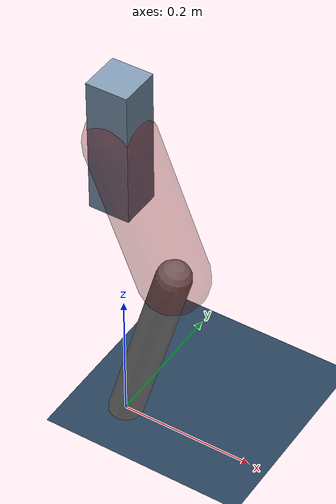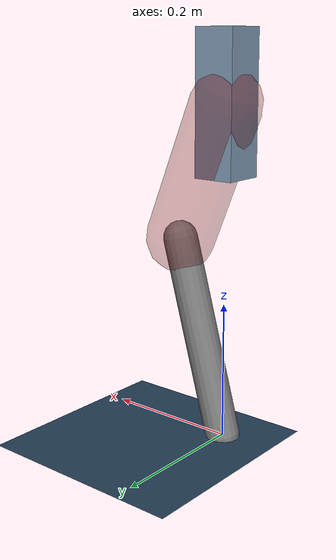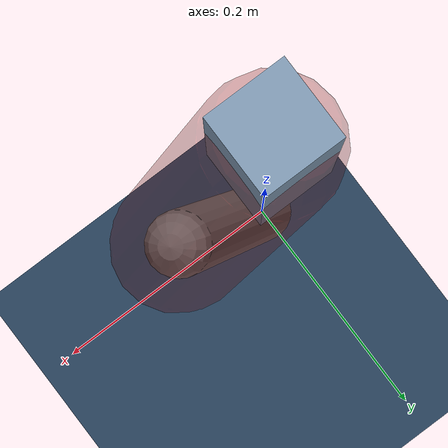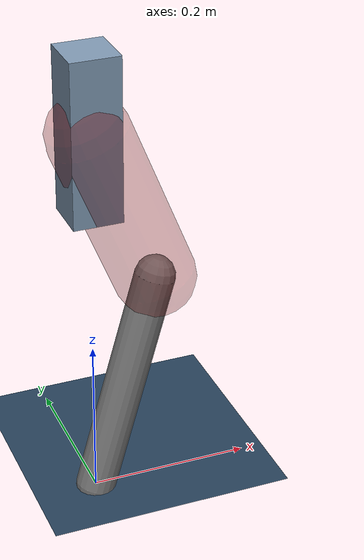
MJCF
<mujoco model="Hopper2D">
	<compiler inertiafromgeom="true" angle="radian" />
	<option timestep="0.001" integrator="implicit" cone="elliptic" solver="Newton" tolerance="1e-10" />

	<default>
		<geom contype="1" conaffinity="1" condim="3" friction="2 0.005 0.0001" solref="0.005 1" />
		<joint limited="true" damping="0.1" />
	</default>

	<asset>
		<texture name="skybox" type="skybox" builtin="gradient" rgb1=".4 .6 .8" rgb2="0 0 0" width="800" height="800" />
		<texture name="grid" type="2d" builtin="checker" rgb1=".1 .2 .3" rgb2=".2 .3 .4" width="300" height="300" mark="edge" markrgb=".2 .3 .4" />
		<material name="ground" texture="grid" texrepeat="1 1" texuniform="true" reflectance="0.1" />
		<material name="leg" rgba="0.5 0.6 0.7 1" />
	</asset>

	<worldbody>

		<geom name="floor" type="plane" size="5 5 0.25" material="ground" />

		<light directional="false" diffuse="0.8 0.8 0.8" specular="0.3 0.3 0.3" pos="0 0 2" dir="0 0 -1" />
		<light mode="targetbodycom" target="base" directional="false" diffuse="0.8 0.8 0.8" specular="0.3 0.3 0.3" pos="0 0 2" dir="0 0 -1" />

		<camera name="fixed" pos="0 -2 1" xyaxes="1 0 0 0 0 1" />
		<camera name="tracking" mode="trackcom" pos="0 -3 1" />

		<body name="root" pos="0 0 0.48110733655768834">
			<joint name="slide_x" type="slide" axis="1 0 0" range="-100 100" />
			<joint name="slide_z" type="slide" axis="0 0 1" range="0 10" />

			<body name="base" pos="0 0 0">
				<geom name="torso" type="box" size="0.03 0.03 0.1" mass="2.527" material="leg" />

				<body name="link1" pos="0 0 0" euler="0 1.1833935965135844 0">
					<joint type="hinge" axis="0 -1 0" pos="0 0 0" name="hinge1" limited="true" range="-3.14 3.14" stiffness="0" damping="0.1" />
					<geom name="thigh" type="capsule" fromto="0 0 0 0.21054893187842919 0 0" size="0.05" rgba="0.5 0 0 0.3" mass="0.755872329696073" />

					<body name="link2" pos="0.21054893187842919 0 0" euler="0 0.6585212194499406 0">
						<joint type="hinge" axis="0 -1 0" pos="0 0 0" name="hinge2" limited="true" range="-3.14 3.14" stiffness="0" damping="0.1" />
						<geom name="shank" type="capsule" fromto="0 0 0 0.29701069124940904 0 0" size="0.025" mass="0.4810085529995272" />

					</body>
				</body>
			</body>
		</body>
	</worldbody>

	<actuator>
		<motor name="torque1" joint="hinge1" ctrlrange="-84.18678979224755 84.18678979224755" ctrllimited="true" gear="1" />
		<motor name="torque2" joint="hinge2" ctrlrange="-31.19473343541833 31.19473343541833" ctrllimited="true" gear="1" />
	</actuator>
</mujoco>
